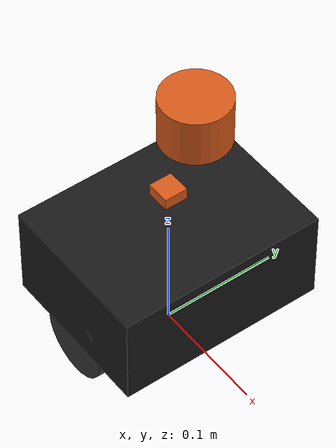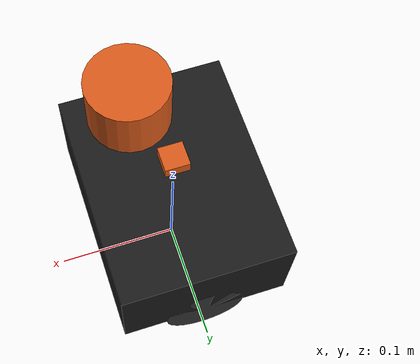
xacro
<?xml version="1.0"?>
<robot xmlns:xacro="http://www.ros.org/wiki/xacro" name="turtlebot3_burger">
  <xacro:arg name="prefix" default=""/>
  <xacro:property name="prefix" value="$(arg prefix)"/>

  <xacro:property name="base_length" value="0.138"/>
  <xacro:property name="base_width" value="0.178"/>
  <xacro:property name="base_height" value="0.080"/>
  <xacro:property name="wheel_radius" value="0.033"/>
  <xacro:property name="wheel_width" value="0.018"/>
  <xacro:property name="wheel_separation" value="0.160"/>
  <xacro:property name="base_z" value="${wheel_radius + (base_height * 0.5)}"/>
  <xacro:property name="wheel_y_offset" value="${wheel_separation * 0.5}"/>
  <xacro:property name="scan_x" value="0.032"/>
  <xacro:property name="scan_z" value="0.172"/>
  <xacro:property name="imu_z" value="0.068"/>

  <material name="base_color">
    <color rgba="0.10 0.10 0.10 1.0"/>
  </material>
  <material name="wheel_color">
    <color rgba="0.20 0.20 0.20 1.0"/>
  </material>
  <material name="sensor_color">
    <color rgba="0.85 0.35 0.10 1.0"/>
  </material>

  <link name="${prefix}base_footprint"/>

  <joint name="${prefix}base_footprint_joint" type="fixed">
    <parent link="${prefix}base_footprint"/>
    <child link="${prefix}base_link"/>
    <origin xyz="0 0 ${base_z}" rpy="0 0 0"/>
  </joint>

  <link name="${prefix}base_link">
    <visual>
      <origin xyz="0 0 0" rpy="0 0 0"/>
      <geometry>
        <box size="${base_length} ${base_width} ${base_height}"/>
      </geometry>
      <material name="base_color"/>
    </visual>
    <collision>
      <origin xyz="0 0 0" rpy="0 0 0"/>
      <geometry>
        <box size="${base_length} ${base_width} ${base_height}"/>
      </geometry>
    </collision>
    <inertial>
      <origin xyz="0 0 0" rpy="0 0 0"/>
      <mass value="1.0"/>
      <inertia ixx="0.01" ixy="0.0" ixz="0.0" iyy="0.01" iyz="0.0" izz="0.02"/>
    </inertial>
  </link>

  <joint name="${prefix}left_wheel_joint" type="continuous">
    <parent link="${prefix}base_link"/>
    <child link="${prefix}left_wheel_link"/>
    <origin xyz="0 ${wheel_y_offset} ${-base_height * 0.5}" rpy="-1.57079632679 0 0"/>
    <axis xyz="0 0 1"/>
  </joint>

  <link name="${prefix}left_wheel_link">
    <visual>
      <geometry>
        <cylinder radius="${wheel_radius}" length="${wheel_width}"/>
      </geometry>
      <material name="wheel_color"/>
    </visual>
    <collision>
      <geometry>
        <cylinder radius="${wheel_radius}" length="${wheel_width}"/>
      </geometry>
    </collision>
    <inertial>
      <mass value="0.1"/>
      <inertia ixx="0.0001" ixy="0.0" ixz="0.0" iyy="0.0001" iyz="0.0" izz="0.0001"/>
    </inertial>
  </link>

  <joint name="${prefix}right_wheel_joint" type="continuous">
    <parent link="${prefix}base_link"/>
    <child link="${prefix}right_wheel_link"/>
    <origin xyz="0 ${-wheel_y_offset} ${-base_height * 0.5}" rpy="-1.57079632679 0 0"/>
    <axis xyz="0 0 1"/>
  </joint>

  <link name="${prefix}right_wheel_link">
    <visual>
      <geometry>
        <cylinder radius="${wheel_radius}" length="${wheel_width}"/>
      </geometry>
      <material name="wheel_color"/>
    </visual>
    <collision>
      <geometry>
        <cylinder radius="${wheel_radius}" length="${wheel_width}"/>
      </geometry>
    </collision>
    <inertial>
      <mass value="0.1"/>
      <inertia ixx="0.0001" ixy="0.0" ixz="0.0" iyy="0.0001" iyz="0.0" izz="0.0001"/>
    </inertial>
  </link>

  <joint name="${prefix}caster_back_joint" type="fixed">
    <parent link="${prefix}base_link"/>
    <child link="${prefix}caster_back_link"/>
    <origin xyz="-0.045 0 ${-base_height * 0.5}" rpy="0 0 0"/>
  </joint>

  <link name="${prefix}caster_back_link">
    <visual>
      <geometry>
        <sphere radius="0.012"/>
      </geometry>
      <material name="wheel_color"/>
    </visual>
    <collision>
      <geometry>
        <sphere radius="0.012"/>
      </geometry>
    </collision>
    <inertial>
      <mass value="0.01"/>
      <inertia ixx="0.00001" ixy="0.0" ixz="0.0" iyy="0.00001" iyz="0.0" izz="0.00001"/>
    </inertial>
  </link>

  <joint name="${prefix}base_scan_joint" type="fixed">
    <parent link="${prefix}base_link"/>
    <child link="${prefix}base_scan"/>
    <origin xyz="${scan_x} 0 ${scan_z}" rpy="0 0 0"/>
  </joint>

  <link name="${prefix}base_scan">
    <visual>
      <geometry>
        <cylinder radius="0.028" length="0.040"/>
      </geometry>
      <material name="sensor_color"/>
    </visual>
    <collision>
      <geometry>
        <cylinder radius="0.028" length="0.040"/>
      </geometry>
    </collision>
    <inertial>
      <mass value="0.05"/>
      <inertia ixx="0.00002" ixy="0.0" ixz="0.0" iyy="0.00002" iyz="0.0" izz="0.00002"/>
    </inertial>
  </link>

  <joint name="${prefix}imu_joint" type="fixed">
    <parent link="${prefix}base_link"/>
    <child link="${prefix}imu_link"/>
    <origin xyz="0 0 ${imu_z}" rpy="0 0 0"/>
  </joint>

  <link name="${prefix}imu_link">
    <visual>
      <geometry>
        <box size="0.020 0.020 0.010"/>
      </geometry>
      <material name="sensor_color"/>
    </visual>
    <collision>
      <geometry>
        <box size="0.020 0.020 0.010"/>
      </geometry>
    </collision>
    <inertial>
      <mass value="0.01"/>
      <inertia ixx="0.00001" ixy="0.0" ixz="0.0" iyy="0.00001" iyz="0.0" izz="0.00001"/>
    </inertial>
  </link>
</robot>
